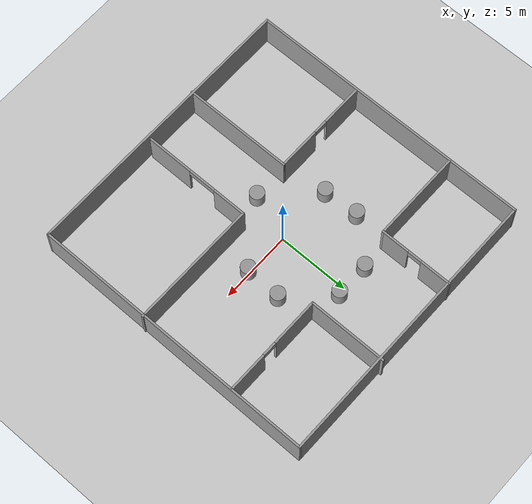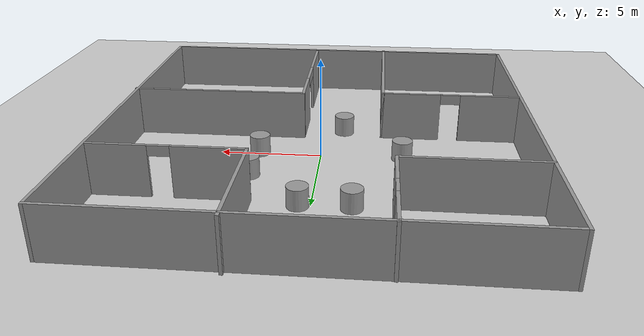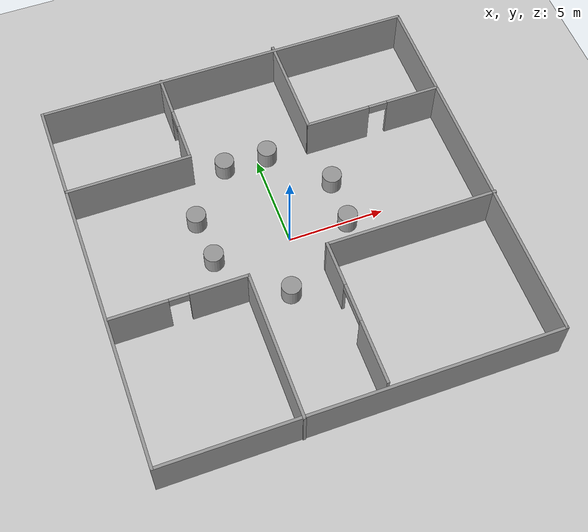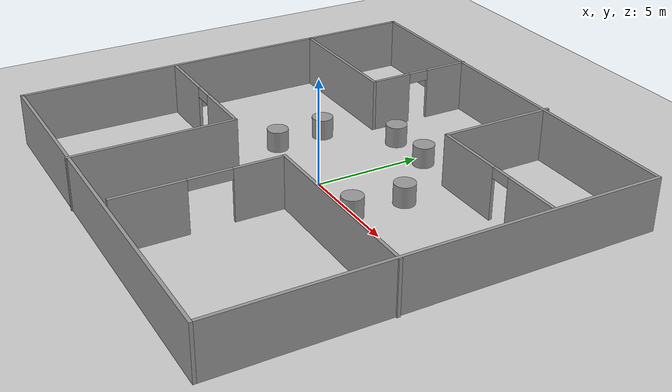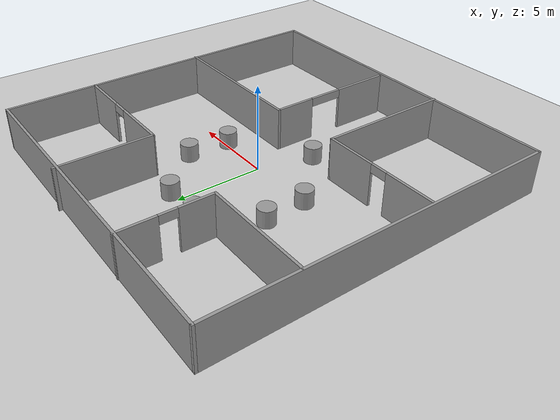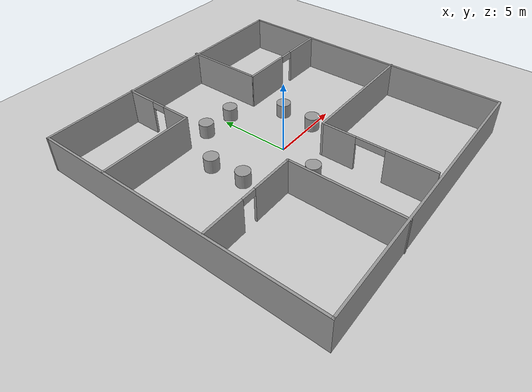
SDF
<sdf version="1.6">
 <world name="default">
  <light name="sun" type="directional">
   <pose>0 0 10 0 -0 0</pose>
   <diffuse>0.8 0.8 0.8 1</diffuse>
   <specular>0.2 0.2 0.2 1</specular>
   <attenuation>
    <range>1000</range>
    <constant>0.9</constant>
    <linear>0.01</linear>
    <quadratic>0.001</quadratic>
   </attenuation>
   <direction>-0.5 0.1 -0.9</direction>
  </light>
  <model name="ground_plane">
   <static>1</static>
   <link name="link">
    <collision name="collision">
     <geometry><plane><normal>0 0 1</normal><size>100 100</size></plane></geometry>
     <surface><friction><ode><mu>100</mu><mu2>50</mu2></ode></friction></surface>
    </collision>
    <visual name="visual">
     <cast_shadows>0</cast_shadows>
     <geometry><plane><normal>0 0 1</normal><size>100 100</size></plane></geometry>
     <material>
      <script><uri>file://media/materials/scripts/gazebo.material</uri><name>Gazebo/Grey</name></script>
     </material>
    </visual>
   </link>
  </model>
  <gravity>0 0 -9.8</gravity>
  <magnetic_field>6e-06 2.3e-05 -4.2e-05</magnetic_field>
  <atmosphere type="adiabatic"/>
  <physics name="default_physics" default="0" type="ode">
   <max_step_size>0.001</max_step_size>
   <real_time_factor>1</real_time_factor>
   <real_time_update_rate>1000</real_time_update_rate>
  </physics>
  <scene><ambient>0.4 0.4 0.4 1</ambient><background>0.7 0.7 0.7 1</background><shadows>1</shadows></scene>
  <spherical_coordinates>
   <surface_model>EARTH_WGS84</surface_model>
   <latitude_deg>0</latitude_deg>
   <longitude_deg>0</longitude_deg>
   <elevation>0</elevation>
   <heading_deg>0</heading_deg>
  </spherical_coordinates>
  <model name="complex_map">
   <link name="Wall_10">
    <collision name="Wall_10_Collision">
     <geometry><box><size>20.25 0.15 2.5</size></box></geometry>
     <pose>0 0 1.25 0 -0 0</pose>
    </collision>
    <visual name="Wall_10_Visual">
     <pose>0 0 1.25 0 -0 0</pose>
     <geometry><box><size>20.25 0.15 2.5</size></box></geometry>
     <material>
      <script><uri>file://media/materials/scripts/gazebo.material</uri><name>Gazebo/Grey</name></script>
      <ambient>1 1 1 1</ambient>
     </material>
     <meta><layer>0</layer></meta>
    </visual>
    <pose>9.889 -0.068497 0 0 0 -1.5708</pose>
   </link>
   <link name="Wall_18">
    <pose>-3.5818 7.47523 0 0 0 -1.5708</pose>
    <visual name="Wall_18_Visual_0">
     <pose>-1.52195 0 1.25 0 -0 0</pose>
     <geometry><box><size>2.2061 0.15 2.5</size></box></geometry>
     <material>
      <script><uri>file://media/materials/scripts/gazebo.material</uri><name>Gazebo/Grey</name></script>
      <ambient>1 1 1 1</ambient>
     </material>
     <meta><layer>0</layer></meta>
    </visual>
    <collision name="Wall_18_Collision_0">
     <geometry><box><size>2.2061 0.15 2.5</size></box></geometry>
     <pose>-1.52195 0 1.25 0 -0 0</pose>
    </collision>
    <visual name="Wall_18_Visual_1">
     <pose>1.60305 0 1.25 0 -0 0</pose>
     <geometry><box><size>2.0439 0.15 2.5</size></box></geometry>
     <material>
      <script><uri>file://media/materials/scripts/gazebo.material</uri><name>Gazebo/Grey</name></script>
      <ambient>1 1 1 1</ambient>
     </material>
     <meta><layer>0</layer></meta>
    </visual>
    <collision name="Wall_18_Collision_1">
     <geometry><box><size>2.0439 0.15 2.5</size></box></geometry>
     <pose>1.60305 0 1.25 0 -0 0</pose>
    </collision>
    <visual name="Wall_18_Visual_2">
     <pose>0.081096 0 2.25 0 -0 0</pose>
     <geometry><box><size>1 0.15 0.5</size></box></geometry>
     <material>
      <script><uri>file://media/materials/scripts/gazebo.material</uri><name>Gazebo/Grey</name></script>
      <ambient>1 1 1 1</ambient>
     </material>
     <meta><layer>0</layer></meta>
    </visual>
    <collision name="Wall_18_Collision_2">
     <geometry><box><size>1 0.15 0.5</size></box></geometry>
     <pose>0.081096 0 2.25 0 -0 0</pose>
    </collision>
   </link>
   <link name="Wall_19">
    <collision name="Wall_19_Collision">
     <geometry><box><size>6.5 0.15 2.5</size></box></geometry>
     <pose>0 0 1.25 0 -0 0</pose>
    </collision>
    <visual name="Wall_19_Visual">
     <pose>0 0 1.25 0 -0 0</pose>
     <geometry><box><size>6.5 0.15 2.5</size></box></geometry>
     <material>
      <script><uri>file://media/materials/scripts/gazebo.material</uri><name>Gazebo/Grey</name></script>
      <ambient>1 1 1 1</ambient>
     </material>
     <meta><layer>0</layer></meta>
    </visual>
    <pose>-6.7568 4.92523 0 0 -0 3.14159</pose>
   </link>
   <link name="Wall_22">
    <collision name="Wall_22_Collision">
     <geometry><box><size>5.5 0.15 2.5</size></box></geometry>
     <pose>0 0 1.25 0 -0 0</pose>
    </collision>
    <visual name="Wall_22_Visual">
     <pose>0 0 1.25 0 -0 0</pose>
     <geometry><box><size>5.5 0.15 2.5</size></box></geometry>
     <material>
      <script><uri>file://media/materials/scripts/gazebo.material</uri><name>Gazebo/Grey</name></script>
      <ambient>1 1 1 1</ambient>
     </material>
     <meta><layer>0</layer></meta>
    </visual>
    <pose>2.71558 7.49175 0 0 0 -1.5708</pose>
   </link>
   <link name="Wall_25">
    <pose>6.27818 4.7484 0 0 -0 0</pose>
    <visual name="Wall_25_Visual_0">
     <pose>-1.91664 0 1.25 0 -0 0</pose>
     <geometry><box><size>3.41673 0.15 2.5</size></box></geometry>
     <material>
      <script><uri>file://media/materials/scripts/gazebo.material</uri><name>Gazebo/Grey</name></script>
      <ambient>1 1 1 1</ambient>
     </material>
     <meta><layer>0</layer></meta>
    </visual>
    <collision name="Wall_25_Collision_0">
     <geometry><box><size>3.41673 0.15 2.5</size></box></geometry>
     <pose>-1.91664 0 1.25 0 -0 0</pose>
    </collision>
    <visual name="Wall_25_Visual_1">
     <pose>2.20836 0 1.25 0 -0 0</pose>
     <geometry><box><size>2.83327 0.15 2.5</size></box></geometry>
     <material>
      <script><uri>file://media/materials/scripts/gazebo.material</uri><name>Gazebo/Grey</name></script>
      <ambient>1 1 1 1</ambient>
     </material>
     <meta><layer>0</layer></meta>
    </visual>
    <collision name="Wall_25_Collision_1">
     <geometry><box><size>2.83327 0.15 2.5</size></box></geometry>
     <pose>2.20836 0 1.25 0 -0 0</pose>
    </collision>
    <visual name="Wall_25_Visual_2">
     <pose>0.291727 0 2.25 0 -0 0</pose>
     <geometry><box><size>1 0.15 0.5</size></box></geometry>
     <material>
      <script><uri>file://media/materials/scripts/gazebo.material</uri><name>Gazebo/Grey</name></script>
      <ambient>1 1 1 1</ambient>
     </material>
     <meta><layer>0</layer></meta>
    </visual>
    <collision name="Wall_25_Collision_2">
     <geometry><box><size>1 0.15 0.5</size></box></geometry>
     <pose>0.291727 0 2.25 0 -0 0</pose>
    </collision>
   </link>
   <link name="Wall_28">
    <pose>-6.417 -2.56675 0 0 -0 0</pose>
    <visual name="Wall_28_Visual_0">
     <pose>-2.01111 0 1.25 0 -0 0</pose>
     <geometry><box><size>2.97779 0.15 2.5</size></box></geometry>
     <material>
      <script><uri>file://media/materials/scripts/gazebo.material</uri><name>Gazebo/Grey</name></script>
      <ambient>1 1 1 1</ambient>
     </material>
     <meta><layer>0</layer></meta>
    </visual>
    <collision name="Wall_28_Collision_0">
     <geometry><box><size>2.97779 0.15 2.5</size></box></geometry>
     <pose>-2.01111 0 1.25 0 -0 0</pose>
    </collision>
    <visual name="Wall_28_Visual_1">
     <pose>1.98889 0 1.25 0 -0 0</pose>
     <geometry><box><size>3.02221 0.15 2.5</size></box></geometry>
     <material>
      <script><uri>file://media/materials/scripts/gazebo.material</uri><name>Gazebo/Grey</name></script>
      <ambient>1 1 1 1</ambient>
     </material>
     <meta><layer>0</layer></meta>
    </visual>
    <collision name="Wall_28_Collision_1">
     <geometry><box><size>3.02221 0.15 2.5</size></box></geometry>
     <pose>1.98889 0 1.25 0 -0 0</pose>
    </collision>
    <visual name="Wall_28_Visual_2">
     <pose>-0.022212 0 2.25 0 -0 0</pose>
     <geometry><box><size>1 0.15 0.5</size></box></geometry>
     <material>
      <script><uri>file://media/materials/scripts/gazebo.material</uri><name>Gazebo/Grey</name></script>
      <ambient>1 1 1 1</ambient>
     </material>
     <meta><layer>0</layer></meta>
    </visual>
    <collision name="Wall_28_Collision_2">
     <geometry><box><size>1 0.15 0.5</size></box></geometry>
     <pose>-0.022212 0 2.25 0 -0 0</pose>
    </collision>
   </link>
   <link name="Wall_29">
    <collision name="Wall_29_Collision">
     <geometry><box><size>7.75 0.15 2.5</size></box></geometry>
     <pose>0 0 1.25 0 -0 0</pose>
    </collision>
    <visual name="Wall_29_Visual">
     <pose>0 0 1.25 0 -0 0</pose>
     <geometry><box><size>7.75 0.15 2.5</size></box></geometry>
     <material>
      <script><uri>file://media/materials/scripts/gazebo.material</uri><name>Gazebo/Grey</name></script>
      <ambient>1 1 1 1</ambient>
     </material>
     <meta><layer>0</layer></meta>
    </visual>
    <pose>-2.992 -6.36675 0 0 0 -1.5708</pose>
   </link>
   <link name="Wall_31">
    <collision name="Wall_31_Collision">
     <geometry><box><size>9 0.15 2.5</size></box></geometry>
     <pose>0 0 1.25 0 -0 0</pose>
    </collision>
    <visual name="Wall_31_Visual">
     <pose>0 0 1.25 0 -0 0</pose>
     <geometry><box><size>9 0.15 2.5</size></box></geometry>
     <material>
      <script><uri>file://media/materials/scripts/gazebo.material</uri><name>Gazebo/Grey</name></script>
      <ambient>1 1 1 1</ambient>
     </material>
     <meta><layer>0</layer></meta>
    </visual>
    <pose>5.53601 -2.22175 0 0 -0 3.14159</pose>
   </link>
   <link name="Wall_32">
    <pose>1.11101 -6.02175 0 0 0 -1.5708</pose>
    <visual name="Wall_32_Visual_0">
     <pose>-2.66023 0 1.25 0 -0 0</pose>
     <geometry><box><size>2.42954 0.15 2.5</size></box></geometry>
     <material>
      <script><uri>file://media/materials/scripts/gazebo.material</uri><name>Gazebo/Grey</name></script>
      <ambient>1 1 1 1</ambient>
     </material>
     <meta><layer>0</layer></meta>
    </visual>
    <collision name="Wall_32_Collision_0">
     <geometry><box><size>2.42954 0.15 2.5</size></box></geometry>
     <pose>-2.66023 0 1.25 0 -0 0</pose>
    </collision>
    <visual name="Wall_32_Visual_1">
     <pose>2.21477 0 1.25 0 -0 0</pose>
     <geometry><box><size>3.32046 0.15 2.5</size></box></geometry>
     <material>
      <script><uri>file://media/materials/scripts/gazebo.material</uri><name>Gazebo/Grey</name></script>
      <ambient>1 1 1 1</ambient>
     </material>
     <meta><layer>0</layer></meta>
    </visual>
    <collision name="Wall_32_Collision_1">
     <geometry><box><size>3.32046 0.15 2.5</size></box></geometry>
     <pose>2.21477 0 1.25 0 -0 0</pose>
    </collision>
    <visual name="Wall_32_Visual_2">
     <pose>-0.445457 0 2.25 0 -0 0</pose>
     <geometry><box><size>2 0.15 0.5</size></box></geometry>
     <material>
      <script><uri>file://media/materials/scripts/gazebo.material</uri><name>Gazebo/Grey</name></script>
      <ambient>1 1 1 1</ambient>
     </material>
     <meta><layer>0</layer></meta>
    </visual>
    <collision name="Wall_32_Collision_2">
     <geometry><box><size>2 0.15 0.5</size></box></geometry>
     <pose>-0.445457 0 2.25 0 -0 0</pose>
    </collision>
   </link>
   <link name="Wall_4">
    <collision name="Wall_4_Collision">
     <geometry><box><size>20 0.15 2.5</size></box></geometry>
     <pose>0 0 1.25 0 -0 0</pose>
    </collision>
    <visual name="Wall_4_Visual">
     <pose>0 0 1.25 0 -0 0</pose>
     <geometry><box><size>20 0.15 2.5</size></box></geometry>
     <material>
      <script><uri>file://media/materials/scripts/gazebo.material</uri><name>Gazebo/Grey</name></script>
      <ambient>1 1 1 1</ambient>
     </material>
     <meta><layer>0</layer></meta>
    </visual>
    <pose>-0.036004 9.9815 0 0 -0 0</pose>
   </link>
   <link name="Wall_6">
    <collision name="Wall_6_Collision">
     <geometry><box><size>20.25 0.15 2.5</size></box></geometry>
     <pose>0 0 1.25 0 -0 0</pose>
    </collision>
    <visual name="Wall_6_Visual">
     <pose>0 0 1.25 0 -0 0</pose>
     <geometry><box><size>20.25 0.15 2.5</size></box></geometry>
     <material>
      <script><uri>file://media/materials/scripts/gazebo.material</uri><name>Gazebo/Grey</name></script>
      <ambient>1 1 1 1</ambient>
     </material>
     <meta><layer>0</layer></meta>
    </visual>
    <pose>-9.961 -0.068497 0 0 0 -1.5708</pose>
   </link>
   <link name="Wall_8">
    <collision name="Wall_8_Collision">
     <geometry><box><size>20 0.15 2.5</size></box></geometry>
     <pose>0 0 1.25 0 -0 0</pose>
    </collision>
    <visual name="Wall_8_Visual">
     <pose>0 0 1.25 0 -0 0</pose>
     <geometry><box><size>20 0.15 2.5</size></box></geometry>
     <material>
      <script><uri>file://media/materials/scripts/gazebo.material</uri><name>Gazebo/Grey</name></script>
      <ambient>1 1 1 1</ambient>
     </material>
     <meta><layer>0</layer></meta>
    </visual>
    <pose>-0.036004 -10.1185 0 0 -0 0</pose>
   </link>
   <static>1</static>
  </model>
  <model name="unit_cylinder">
   <pose>-4.13685 2.44414 0.499998 3e-06 -4e-06 0</pose>
   <link name="link">
    <inertial>
     <mass>1</mass>
     <inertia><ixx>0.145833</ixx><ixy>0</ixy><ixz>0</ixz><iyy>0.145833</iyy><iyz>0</iyz><izz>0.125</izz></inertia>
    </inertial>
    <collision name="collision">
     <geometry><cylinder><radius>0.5</radius><length>1</length></cylinder></geometry>
    </collision>
    <visual name="visual">
     <geometry><cylinder><radius>0.5</radius><length>1</length></cylinder></geometry>
     <material>
      <script><name>Gazebo/Grey</name><uri>file://media/materials/scripts/gazebo.material</uri></script>
     </material>
    </visual>
   </link>
  </model>
  <model name="unit_cylinder_0">
   <pose>-4 2e-06 0.499992 -3e-06 4e-06 0</pose>
   <link name="link">
    <inertial>
     <mass>1</mass>
     <inertia><ixx>0.145833</ixx><ixy>0</ixy><ixz>0</ixz><iyy>0.145833</iyy><iyz>0</iyz><izz>0.125</izz></inertia>
    </inertial>
    <collision name="collision">
     <geometry><cylinder><radius>0.5</radius><length>1</length></cylinder></geometry>
    </collision>
    <visual name="visual">
     <geometry><cylinder><radius>0.5</radius><length>1</length></cylinder></geometry>
     <material>
      <script><name>Gazebo/Grey</name><uri>file://media/materials/scripts/gazebo.material</uri></script>
     </material>
    </visual>
   </link>
  </model>
  <model name="unit_cylinder_1">
   <pose>0.562461 5.07652 0.499998 3e-06 -4e-06 0</pose>
   <link name="link">
    <inertial>
     <mass>1</mass>
     <inertia><ixx>0.145833</ixx><ixy>0</ixy><ixz>0</ixz><iyy>0.145833</iyy><iyz>0</iyz><izz>0.125</izz></inertia>
    </inertial>
    <collision name="collision">
     <geometry><cylinder><radius>0.5</radius><length>1</length></cylinder></geometry>
    </collision>
    <visual name="visual">
     <geometry><cylinder><radius>0.5</radius><length>1</length></cylinder></geometry>
     <material>
      <script><name>Gazebo/Grey</name><uri>file://media/materials/scripts/gazebo.material</uri></script>
     </material>
    </visual>
   </link>
  </model>
  <model name="unit_cylinder_2">
   <pose>-1.77395 5.09754 0.499992 -3e-06 -4e-06 -0</pose>
   <link name="link">
    <inertial>
     <mass>1</mass>
     <inertia><ixx>0.145833</ixx><ixy>0</ixy><ixz>0</ixz><iyy>0.145833</iyy><iyz>0</iyz><izz>0.125</izz></inertia>
    </inertial>
    <collision name="collision">
     <geometry><cylinder><radius>0.5</radius><length>1</length></cylinder></geometry>
    </collision>
    <visual name="visual">
     <geometry><cylinder><radius>0.5</radius><length>1</length></cylinder></geometry>
     <material>
      <script><name>Gazebo/Grey</name><uri>file://media/materials/scripts/gazebo.material</uri></script>
     </material>
    </visual>
   </link>
  </model>
  <model name="unit_cylinder_3">
   <pose>3.17187 2.39446 0.499993 -3e-06 -3e-06 0</pose>
   <link name="link">
    <inertial>
     <mass>1</mass>
     <inertia><ixx>0.145833</ixx><ixy>0</ixy><ixz>0</ixz><iyy>0.145833</iyy><iyz>0</iyz><izz>0.125</izz></inertia>
    </inertial>
    <collision name="collision">
     <geometry><cylinder><radius>0.5</radius><length>1</length></cylinder></geometry>
    </collision>
    <visual name="visual">
     <geometry><cylinder><radius>0.5</radius><length>1</length></cylinder></geometry>
     <material>
      <script><name>Gazebo/Grey</name><uri>file://media/materials/scripts/gazebo.material</uri></script>
     </material>
    </visual>
   </link>
  </model>
  <model name="unit_cylinder_4">
   <pose>3.06736 -0.10413 0.499993 -3e-06 -4e-06 -0</pose>
   <link name="link">
    <inertial>
     <mass>1</mass>
     <inertia><ixx>0.145833</ixx><ixy>0</ixy><ixz>0</ixz><iyy>0.145833</iyy><iyz>0</iyz><izz>0.125</izz></inertia>
    </inertial>
    <collision name="collision">
     <geometry><cylinder><radius>0.5</radius><length>1</length></cylinder></geometry>
    </collision>
    <visual name="visual">
     <geometry><cylinder><radius>0.5</radius><length>1</length></cylinder></geometry>
     <material>
      <script><name>Gazebo/Grey</name><uri>file://media/materials/scripts/gazebo.material</uri></script>
     </material>
    </visual>
   </link>
  </model>
  <model name="unit_cylinder_5">
   <pose>-0.999998 -3 0.499997 3e-06 4e-06 -0</pose>
   <link name="link">
    <inertial>
     <mass>1</mass>
     <inertia><ixx>0.145833</ixx><ixy>0</ixy><ixz>0</ixz><iyy>0.145833</iyy><iyz>0</iyz><izz>0.125</izz></inertia>
    </inertial>
    <collision name="collision">
     <geometry><cylinder><radius>0.5</radius><length>1</length></cylinder></geometry>
    </collision>
    <visual name="visual">
     <geometry><cylinder><radius>0.5</radius><length>1</length></cylinder></geometry>
     <material>
      <script><name>Gazebo/Grey</name><uri>file://media/materials/scripts/gazebo.material</uri></script>
     </material>
    </visual>
   </link>
  </model>
 </world>
</sdf>
